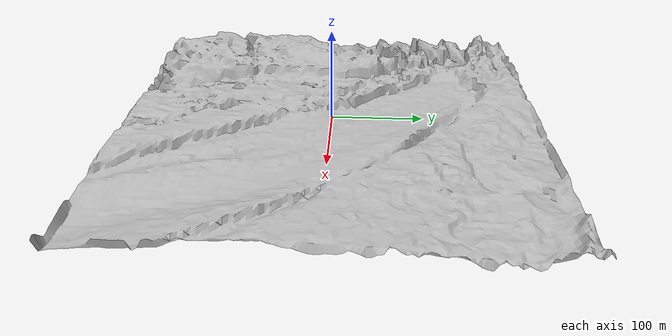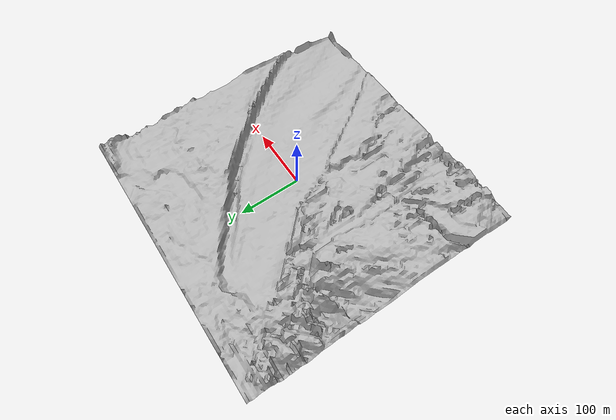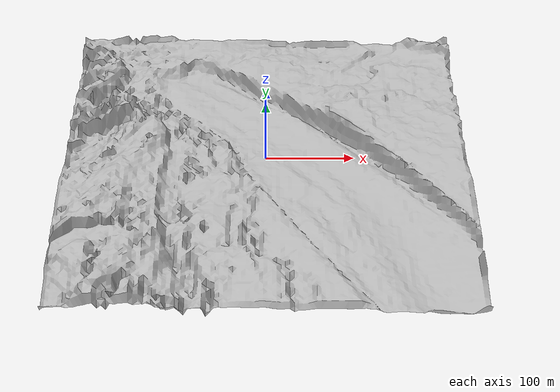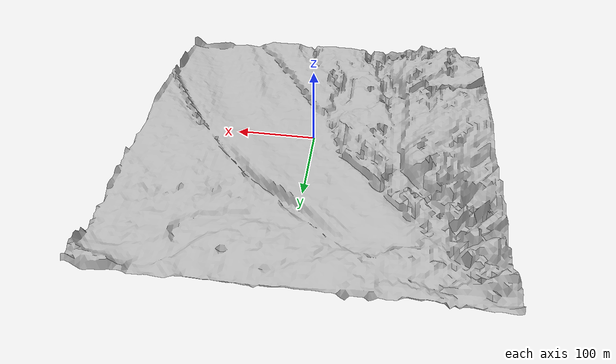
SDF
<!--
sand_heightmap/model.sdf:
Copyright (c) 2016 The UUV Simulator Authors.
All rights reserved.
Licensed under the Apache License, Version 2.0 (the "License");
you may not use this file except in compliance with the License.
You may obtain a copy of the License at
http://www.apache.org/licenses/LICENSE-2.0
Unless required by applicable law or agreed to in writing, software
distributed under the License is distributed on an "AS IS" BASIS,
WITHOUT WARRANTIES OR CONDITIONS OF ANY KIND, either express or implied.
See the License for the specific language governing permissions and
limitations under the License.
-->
<?xml version="1.0" ?>

<sdf version="1.6">
  <world name="empty_underwater">
    <physics name="default_physics" default="true" type="ode">
      <max_step_size>0.002</max_step_size>
      <real_time_factor>1</real_time_factor>
      <real_time_update_rate>500</real_time_update_rate>
      <ode>
        <solver>
          <type>quick</type>
          <iters>50</iters>
          <sor>0.5</sor>
        </solver>
      </ode>
    </physics>
    <scene>
      <ambient>0.01 0.01 0.01 1.0</ambient>
      <sky>
        <clouds>
          <speed>12</speed>
        </clouds>
      </sky>
      <shadows>1</shadows>
      <fog>
        <color>0.1 0.2 0.3 1.0</color>
        <type>linear</type>
        <density>0.001</density>
        <start>10</start>
        <end>200</end>
      </fog>
    </scene>

    <!-- Origin placed somewhere in the middle of the North Sea  -->
    <spherical_coordinates>
      <latitude_deg>56.71897669633431</latitude_deg>
      <longitude_deg>3.515625</longitude_deg>
    </spherical_coordinates>

    <!-- Global light source -->
    <include>
      <uri>model://sun</uri>
    </include>

    <!-- Bounding box with sea surface -->
    <include>
      <uri>model://sand_heightmap</uri>
      <pose>0 0 0 0 0 0</pose>
    </include>

    <plugin name="gazebo_ros_state" filename="libgazebo_ros_state.so">
      <ros>
        <namespace>/</namespace>
        <remapping>model_states:=model_states</remapping>
        <remapping>link_states:=link_states</remapping>
      </ros>

      <update_rate>50.0</update_rate>
    </plugin>

    <plugin name="underwater_current_plugin" filename="libuuv_underwater_current_plugin.so">
      <namespace>hydrodynamics</namespace>
      <constant_current>
        <topic>current_velocity</topic>
        <velocity>
          <mean>3</mean>
          <min>1</min>
          <max>5</max>
          <mu>0.0</mu>
          <noiseAmp>0.5</noiseAmp>
        </velocity>

        <horizontal_angle>
          <mean>0</mean>
          <min>-3.141592653589793238</min>
          <max>3.141592653589793238</max>
          <mu>0.0</mu>
          <noiseAmp>0.0</noiseAmp>
        </horizontal_angle>

        <vertical_angle>
          <mean>0</mean>
          <min>-3.141592653589793238</min>
          <max>3.141592653589793238</max>
          <mu>0.0</mu>
          <noiseAmp>0.0</noiseAmp>
        </vertical_angle>
      </constant_current>
    </plugin>

    <plugin name="spherical_coord" filename="libuuv_spherical_coordinates_plugin.so"/>

  </world>
</sdf>

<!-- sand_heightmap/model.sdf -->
<sdf version="1.5">
  <model name="sand_heightmap">
    <static>true</static>
    <link name="link">
      <collision name="ground">
        <pose>0 0 0 0 0 0</pose>
        <geometry>
          <mesh><uri>model://sand_heightmap/meshes/heightmap.dae</uri></mesh>
        </geometry>
      </collision>

      <visual name="ground_sand">
        <cast_shadows>true</cast_shadows>
        <pose>0 0 0 0 0 0</pose>
        <geometry>
          <mesh><uri>model://sand_heightmap/meshes/heightmap.dae</uri></mesh>
        </geometry>
        <material>
          <script>
            <uri>file://materials/scripts/sand.material</uri>
            <name>UUVSimulator/SandAndStones</name>
          </script>
          <emissive>
            0.6 0.6 0.6 1.0
          </emissive>
        </material>
      </visual>
    </link>
  </model>
</sdf>
